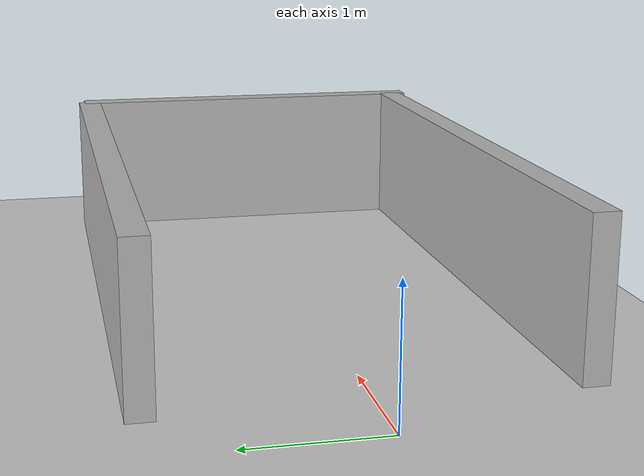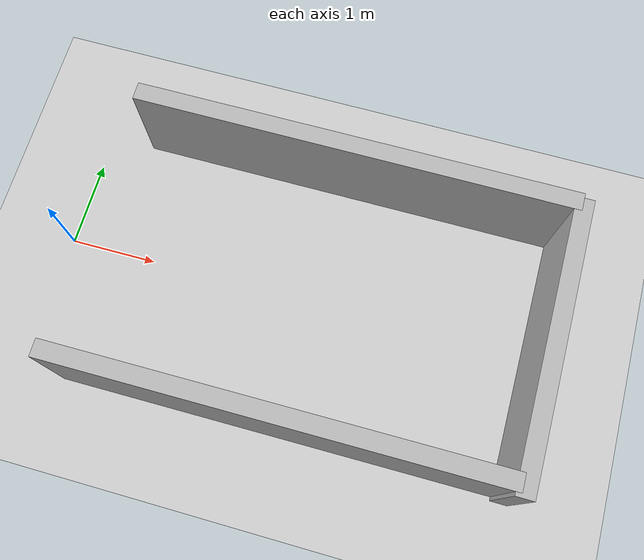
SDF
<?xml version="1.0"?>
<sdf version="1.6">
  <world name="v2-04g-maneuver-s4914">
    <gravity>0 0 -9.81</gravity>
    <physics name="v2_deterministic" type="ode">
      <max_step_size>0.002</max_step_size>
      <real_time_update_rate>500</real_time_update_rate>
    </physics>
    <include>
      <uri>model://sun</uri>
    </include>
    <include>
      <uri>model://ground_plane</uri>
    </include>
    <model name="bay-left">
      <static>true</static>
      <pose>3.009752120 1.522818478 0.600000000 0 0 0.002517713</pose>
      <link name="link">
        <collision name="collision">
          <geometry>
            <box>
              <size>5.000000 0.200000 1.200000</size>
            </box>
          </geometry>
        </collision>
        <visual name="visual">
          <geometry>
            <box>
              <size>5.000000 0.200000 1.200000</size>
            </box>
          </geometry>
        </visual>
      </link>
    </model>
    <model name="bay-right">
      <static>true</static>
      <pose>2.978033157 -1.490613877 0.600000000 0 0 0.004660911</pose>
      <link name="link">
        <collision name="collision">
          <geometry>
            <box>
              <size>5.000000 0.200000 1.200000</size>
            </box>
          </geometry>
        </collision>
        <visual name="visual">
          <geometry>
            <box>
              <size>5.000000 0.200000 1.200000</size>
            </box>
          </geometry>
        </visual>
      </link>
    </model>
    <model name="bay-back">
      <static>true</static>
      <pose>5.518490641 -0.023541503 0.600000000 0 0 -0.003579789</pose>
      <link name="link">
        <collision name="collision">
          <geometry>
            <box>
              <size>0.200000 3.200000 1.200000</size>
            </box>
          </geometry>
        </collision>
        <visual name="visual">
          <geometry>
            <box>
              <size>0.200000 3.200000 1.200000</size>
            </box>
          </geometry>
        </visual>
      </link>
    </model>
  </world>
</sdf>
